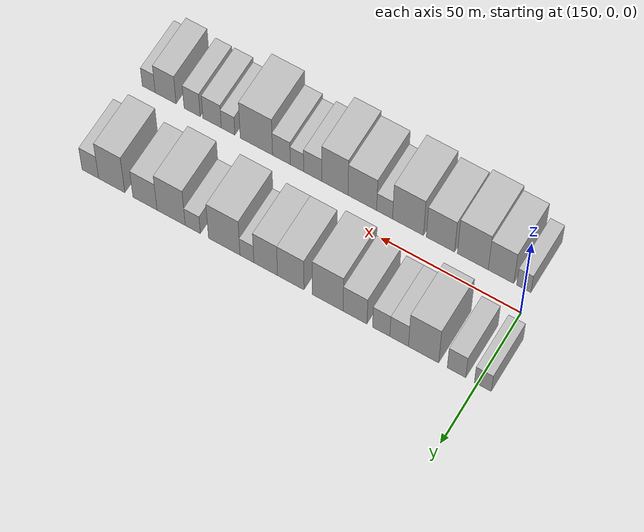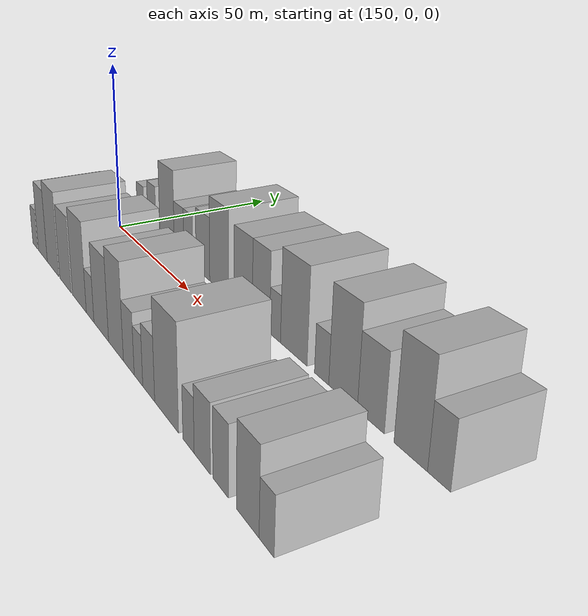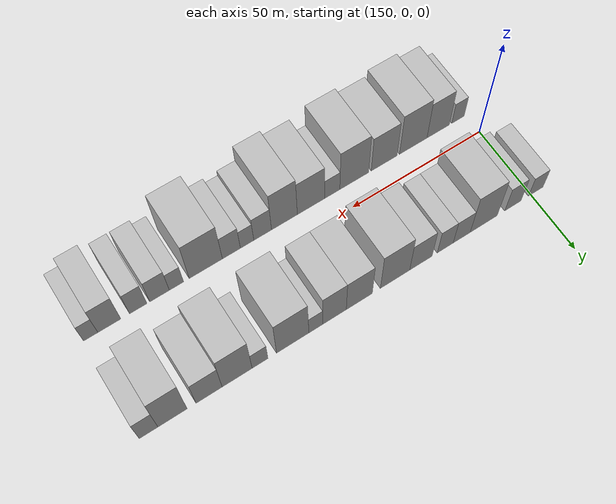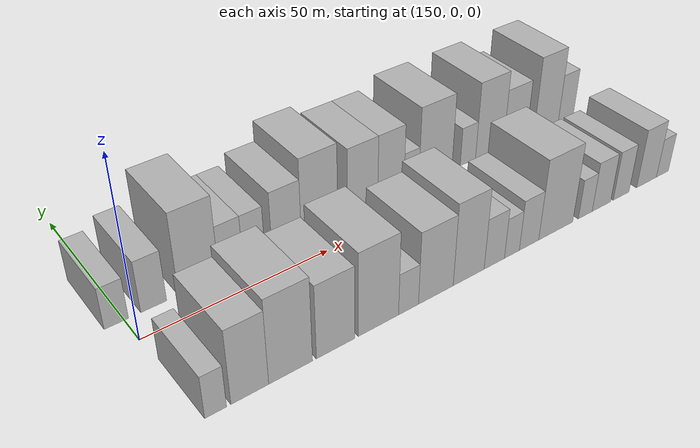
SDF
<sdf version="1.6">
 <world name="default">
  <model name="building_15">
   <static>1</static>
   <pose>148.0686 17.5000 0 0.000000 0.000000 1.570796</pose>
   <link name="link">
    <pose>0 0 6.00 0 0 0</pose>
    <collision name="collision"><geometry><box><size>20.0000 5.8838 12.0000</size></box></geometry></collision>
    <visual name="visual">
     <cast_shadows>0</cast_shadows>
     <geometry><box><size>20.0000 5.8838 12.0000</size></box></geometry>
     <material>
      <script>
       <uri>model://HANNAS_wall/materials/scripts</uri>
       <uri>model://HANNAS_wall/materials/textures</uri>
       <name>vrc/HANNAS_wall</name>
      </script>
     </material>
    </visual>
   </link>
  </model>
  <model name="building_16">
   <static>1</static>
   <pose>157.2566 17.5000 0 0.000000 0.000000 1.570796</pose>
   <link name="link">
    <pose>0 0 7.50 0 0 0</pose>
    <collision name="collision"><geometry><box><size>20.0000 6.4921 15.0000</size></box></geometry></collision>
    <visual name="visual">
     <cast_shadows>0</cast_shadows>
     <geometry><box><size>20.0000 6.4921 15.0000</size></box></geometry>
     <material>
      <script>
       <uri>model://HANNAS_wall/materials/scripts</uri>
       <uri>model://HANNAS_wall/materials/textures</uri>
       <name>vrc/HANNAS_wall</name>
      </script>
     </material>
    </visual>
   </link>
  </model>
  <model name="building_17">
   <static>1</static>
   <pose>168.8353 17.5000 0 0.000000 0.000000 1.570796</pose>
   <link name="link">
    <pose>0 0 12.00 0 0 0</pose>
    <collision name="collision"><geometry><box><size>20.0000 10.6654 24.0000</size></box></geometry></collision>
    <visual name="visual">
     <cast_shadows>0</cast_shadows>
     <geometry><box><size>20.0000 10.6654 24.0000</size></box></geometry>
     <material>
      <script>
       <uri>model://HANNAS_wall/materials/scripts</uri>
       <uri>model://HANNAS_wall/materials/textures</uri>
       <name>vrc/HANNAS_wall</name>
      </script>
     </material>
    </visual>
   </link>
  </model>
  <model name="building_18">
   <static>1</static>
   <pose>177.4639 17.5000 0 0.000000 0.000000 1.570796</pose>
   <link name="link">
    <pose>0 0 7.50 0 0 0</pose>
    <collision name="collision"><geometry><box><size>20.0000 6.5917 15.0000</size></box></geometry></collision>
    <visual name="visual">
     <cast_shadows>0</cast_shadows>
     <geometry><box><size>20.0000 6.5917 15.0000</size></box></geometry>
     <material>
      <script>
       <uri>model://HANNAS_wall/materials/scripts</uri>
       <uri>model://HANNAS_wall/materials/textures</uri>
       <name>vrc/HANNAS_wall</name>
      </script>
     </material>
    </visual>
   </link>
  </model>
  <model name="building_19">
   <static>1</static>
   <pose>183.8232 17.5000 0 0.000000 0.000000 1.570796</pose>
   <link name="link">
    <pose>0 0 7.50 0 0 0</pose>
    <collision name="collision"><geometry><box><size>20.0000 6.1270 15.0000</size></box></geometry></collision>
    <visual name="visual">
     <cast_shadows>0</cast_shadows>
     <geometry><box><size>20.0000 6.1270 15.0000</size></box></geometry>
     <material>
      <script>
       <uri>model://HANNAS_wall/materials/scripts</uri>
       <uri>model://HANNAS_wall/materials/textures</uri>
       <name>vrc/HANNAS_wall</name>
      </script>
     </material>
    </visual>
   </link>
  </model>
  <model name="building_20">
   <static>1</static>
   <pose>193.1469 17.5000 0 0.000000 0.000000 1.570796</pose>
   <link name="link">
    <pose>0 0 9.00 0 0 0</pose>
    <collision name="collision"><geometry><box><size>20.0000 8.5202 18.0000</size></box></geometry></collision>
    <visual name="visual">
     <cast_shadows>0</cast_shadows>
     <geometry><box><size>20.0000 8.5202 18.0000</size></box></geometry>
     <material>
      <script>
       <uri>model://HANNAS_wall/materials/scripts</uri>
       <uri>model://HANNAS_wall/materials/textures</uri>
       <name>vrc/HANNAS_wall</name>
      </script>
     </material>
    </visual>
   </link>
  </model>
  <model name="building_21">
   <static>1</static>
   <pose>202.9003 17.5000 0 0.000000 0.000000 1.570796</pose>
   <link name="link">
    <pose>0 0 12.00 0 0 0</pose>
    <collision name="collision"><geometry><box><size>20.0000 10.9868 24.0000</size></box></geometry></collision>
    <visual name="visual">
     <cast_shadows>0</cast_shadows>
     <geometry><box><size>20.0000 10.9868 24.0000</size></box></geometry>
     <material>
      <script>
       <uri>model://HANNAS_wall/materials/scripts</uri>
       <uri>model://HANNAS_wall/materials/textures</uri>
       <name>vrc/HANNAS_wall</name>
      </script>
     </material>
    </visual>
   </link>
  </model>
  <model name="building_22">
   <static>1</static>
   <pose>216.1861 17.5000 0 0.000000 0.000000 1.570796</pose>
   <link name="link">
    <pose>0 0 10.50 0 0 0</pose>
    <collision name="collision"><geometry><box><size>20.0000 9.5848 21.0000</size></box></geometry></collision>
    <visual name="visual">
     <cast_shadows>0</cast_shadows>
     <geometry><box><size>20.0000 9.5848 21.0000</size></box></geometry>
     <material>
      <script>
       <uri>model://HANNAS_wall/materials/scripts</uri>
       <uri>model://HANNAS_wall/materials/textures</uri>
       <name>vrc/HANNAS_wall</name>
      </script>
     </material>
    </visual>
   </link>
  </model>
  <model name="building_23">
   <static>1</static>
   <pose>225.2567 17.5000 0 0.000000 0.000000 1.570796</pose>
   <link name="link">
    <pose>0 0 10.50 0 0 0</pose>
    <collision name="collision"><geometry><box><size>20.0000 8.5564 21.0000</size></box></geometry></collision>
    <visual name="visual">
     <cast_shadows>0</cast_shadows>
     <geometry><box><size>20.0000 8.5564 21.0000</size></box></geometry>
     <material>
      <script>
       <uri>model://HANNAS_wall/materials/scripts</uri>
       <uri>model://HANNAS_wall/materials/textures</uri>
       <name>vrc/HANNAS_wall</name>
      </script>
     </material>
    </visual>
   </link>
  </model>
  <model name="building_24">
   <static>1</static>
   <pose>232.0431 17.5000 0 0.000000 0.000000 1.570796</pose>
   <link name="link">
    <pose>0 0 6.00 0 0 0</pose>
    <collision name="collision"><geometry><box><size>20.0000 5.0165 12.0000</size></box></geometry></collision>
    <visual name="visual">
     <cast_shadows>0</cast_shadows>
     <geometry><box><size>20.0000 5.0165 12.0000</size></box></geometry>
     <material>
      <script>
       <uri>model://HANNAS_wall/materials/scripts</uri>
       <uri>model://HANNAS_wall/materials/textures</uri>
       <name>vrc/HANNAS_wall</name>
      </script>
     </material>
    </visual>
   </link>
  </model>
  <model name="building_25">
   <static>1</static>
   <pose>240.2965 17.5000 0 0.000000 0.000000 1.570796</pose>
   <link name="link">
    <pose>0 0 12.00 0 0 0</pose>
    <collision name="collision"><geometry><box><size>20.0000 11.4902 24.0000</size></box></geometry></collision>
    <visual name="visual">
     <cast_shadows>0</cast_shadows>
     <geometry><box><size>20.0000 11.4902 24.0000</size></box></geometry>
     <material>
      <script>
       <uri>model://HANNAS_wall/materials/scripts</uri>
       <uri>model://HANNAS_wall/materials/textures</uri>
       <name>vrc/HANNAS_wall</name>
      </script>
     </material>
    </visual>
   </link>
  </model>
  <model name="building_26">
   <static>1</static>
   <pose>251.8174 17.5000 0 0.000000 0.000000 1.570796</pose>
   <link name="link">
    <pose>0 0 6.00 0 0 0</pose>
    <collision name="collision"><geometry><box><size>20.0000 5.5515 12.0000</size></box></geometry></collision>
    <visual name="visual">
     <cast_shadows>0</cast_shadows>
     <geometry><box><size>20.0000 5.5515 12.0000</size></box></geometry>
     <material>
      <script>
       <uri>model://HANNAS_wall/materials/scripts</uri>
       <uri>model://HANNAS_wall/materials/textures</uri>
       <name>vrc/HANNAS_wall</name>
      </script>
     </material>
    </visual>
   </link>
  </model>
  <model name="building_27">
   <static>1</static>
   <pose>259.7761 17.5000 0 0.000000 0.000000 1.570796</pose>
   <link name="link">
    <pose>0 0 12.00 0 0 0</pose>
    <collision name="collision"><geometry><box><size>20.0000 10.3660 24.0000</size></box></geometry></collision>
    <visual name="visual">
     <cast_shadows>0</cast_shadows>
     <geometry><box><size>20.0000 10.3660 24.0000</size></box></geometry>
     <material>
      <script>
       <uri>model://HANNAS_wall/materials/scripts</uri>
       <uri>model://HANNAS_wall/materials/textures</uri>
       <name>vrc/HANNAS_wall</name>
      </script>
     </material>
    </visual>
   </link>
  </model>
  <model name="building_28">
   <static>1</static>
   <pose>269.4195 17.5000 0 0.000000 0.000000 1.570796</pose>
   <link name="link">
    <pose>0 0 9.00 0 0 0</pose>
    <collision name="collision"><geometry><box><size>20.0000 8.9207 18.0000</size></box></geometry></collision>
    <visual name="visual">
     <cast_shadows>0</cast_shadows>
     <geometry><box><size>20.0000 8.9207 18.0000</size></box></geometry>
     <material>
      <script>
       <uri>model://HANNAS_wall/materials/scripts</uri>
       <uri>model://HANNAS_wall/materials/textures</uri>
       <name>vrc/HANNAS_wall</name>
      </script>
     </material>
    </visual>
   </link>
  </model>
  <model name="building_29">
   <static>1</static>
   <pose>281.7597 17.5000 0 0.000000 0.000000 1.570796</pose>
   <link name="link">
    <pose>0 0 12.00 0 0 0</pose>
    <collision name="collision"><geometry><box><size>20.0000 9.7597 24.0000</size></box></geometry></collision>
    <visual name="visual">
     <cast_shadows>0</cast_shadows>
     <geometry><box><size>20.0000 9.7597 24.0000</size></box></geometry>
     <material>
      <script>
       <uri>model://HANNAS_wall/materials/scripts</uri>
       <uri>model://HANNAS_wall/materials/textures</uri>
       <name>vrc/HANNAS_wall</name>
      </script>
     </material>
    </visual>
   </link>
  </model>
  <model name="building_30">
   <static>1</static>
   <pose>289.7358 17.5000 0 0.000000 0.000000 1.570796</pose>
   <link name="link">
    <pose>0 0 7.50 0 0 0</pose>
    <collision name="collision"><geometry><box><size>20.0000 6.1925 15.0000</size></box></geometry></collision>
    <visual name="visual">
     <cast_shadows>0</cast_shadows>
     <geometry><box><size>20.0000 6.1925 15.0000</size></box></geometry>
     <material>
      <script>
       <uri>model://HANNAS_wall/materials/scripts</uri>
       <uri>model://HANNAS_wall/materials/textures</uri>
       <name>vrc/HANNAS_wall</name>
      </script>
     </material>
    </visual>
   </link>
  </model>
  <model name="building_47">
   <static>1</static>
   <pose>153.2281 -17.5000 0 0.000000 0.000000 1.570796</pose>
   <link name="link">
    <pose>0 0 6.00 0 0 0</pose>
    <collision name="collision"><geometry><box><size>20.0000 5.0671 12.0000</size></box></geometry></collision>
    <visual name="visual">
     <cast_shadows>0</cast_shadows>
     <geometry><box><size>20.0000 5.0671 12.0000</size></box></geometry>
     <material>
      <script>
       <uri>model://HANNAS_wall/materials/scripts</uri>
       <uri>model://HANNAS_wall/materials/textures</uri>
       <name>vrc/HANNAS_wall</name>
      </script>
     </material>
    </visual>
   </link>
  </model>
  <model name="building_48">
   <static>1</static>
   <pose>161.2894 -17.5000 0 0.000000 0.000000 1.570796</pose>
   <link name="link">
    <pose>0 0 10.50 0 0 0</pose>
    <collision name="collision"><geometry><box><size>20.0000 9.0556 21.0000</size></box></geometry></collision>
    <visual name="visual">
     <cast_shadows>0</cast_shadows>
     <geometry><box><size>20.0000 9.0556 21.0000</size></box></geometry>
     <material>
      <script>
       <uri>model://HANNAS_wall/materials/scripts</uri>
       <uri>model://HANNAS_wall/materials/textures</uri>
       <name>vrc/HANNAS_wall</name>
      </script>
     </material>
    </visual>
   </link>
  </model>
  <model name="building_49">
   <static>1</static>
   <pose>171.3125 -17.5000 0 0.000000 0.000000 1.570796</pose>
   <link name="link">
    <pose>0 0 12.00 0 0 0</pose>
    <collision name="collision"><geometry><box><size>20.0000 10.9906 24.0000</size></box></geometry></collision>
    <visual name="visual">
     <cast_shadows>0</cast_shadows>
     <geometry><box><size>20.0000 10.9906 24.0000</size></box></geometry>
     <material>
      <script>
       <uri>model://HANNAS_wall/materials/scripts</uri>
       <uri>model://HANNAS_wall/materials/textures</uri>
       <name>vrc/HANNAS_wall</name>
      </script>
     </material>
    </visual>
   </link>
  </model>
  <model name="building_50">
   <static>1</static>
   <pose>182.8734 -17.5000 0 0.000000 0.000000 1.570796</pose>
   <link name="link">
    <pose>0 0 10.50 0 0 0</pose>
    <collision name="collision"><geometry><box><size>20.0000 10.1313 21.0000</size></box></geometry></collision>
    <visual name="visual">
     <cast_shadows>0</cast_shadows>
     <geometry><box><size>20.0000 10.1313 21.0000</size></box></geometry>
     <material>
      <script>
       <uri>model://HANNAS_wall/materials/scripts</uri>
       <uri>model://HANNAS_wall/materials/textures</uri>
       <name>vrc/HANNAS_wall</name>
      </script>
     </material>
    </visual>
   </link>
  </model>
  <model name="building_51">
   <static>1</static>
   <pose>194.5248 -17.5000 0 0.000000 0.000000 1.570796</pose>
   <link name="link">
    <pose>0 0 12.00 0 0 0</pose>
    <collision name="collision"><geometry><box><size>20.0000 11.1714 24.0000</size></box></geometry></collision>
    <visual name="visual">
     <cast_shadows>0</cast_shadows>
     <geometry><box><size>20.0000 11.1714 24.0000</size></box></geometry>
     <material>
      <script>
       <uri>model://HANNAS_wall/materials/scripts</uri>
       <uri>model://HANNAS_wall/materials/textures</uri>
       <name>vrc/HANNAS_wall</name>
      </script>
     </material>
    </visual>
   </link>
  </model>
  <model name="building_52">
   <static>1</static>
   <pose>202.9877 -17.5000 0 0.000000 0.000000 1.570796</pose>
   <link name="link">
    <pose>0 0 6.00 0 0 0</pose>
    <collision name="collision"><geometry><box><size>20.0000 5.7544 12.0000</size></box></geometry></collision>
    <visual name="visual">
     <cast_shadows>0</cast_shadows>
     <geometry><box><size>20.0000 5.7544 12.0000</size></box></geometry>
     <material>
      <script>
       <uri>model://HANNAS_wall/materials/scripts</uri>
       <uri>model://HANNAS_wall/materials/textures</uri>
       <name>vrc/HANNAS_wall</name>
      </script>
     </material>
    </visual>
   </link>
  </model>
  <model name="building_53">
   <static>1</static>
   <pose>211.0605 -17.5000 0 0.000000 0.000000 1.570796</pose>
   <link name="link">
    <pose>0 0 10.50 0 0 0</pose>
    <collision name="collision"><geometry><box><size>20.0000 10.3911 21.0000</size></box></geometry></collision>
    <visual name="visual">
     <cast_shadows>0</cast_shadows>
     <geometry><box><size>20.0000 10.3911 21.0000</size></box></geometry>
     <material>
      <script>
       <uri>model://HANNAS_wall/materials/scripts</uri>
       <uri>model://HANNAS_wall/materials/textures</uri>
       <name>vrc/HANNAS_wall</name>
      </script>
     </material>
    </visual>
   </link>
  </model>
  <model name="building_54">
   <static>1</static>
   <pose>221.0789 -17.5000 0 0.000000 0.000000 1.570796</pose>
   <link name="link">
    <pose>0 0 12.00 0 0 0</pose>
    <collision name="collision"><geometry><box><size>20.0000 9.6458 24.0000</size></box></geometry></collision>
    <visual name="visual">
     <cast_shadows>0</cast_shadows>
     <geometry><box><size>20.0000 9.6458 24.0000</size></box></geometry>
     <material>
      <script>
       <uri>model://HANNAS_wall/materials/scripts</uri>
       <uri>model://HANNAS_wall/materials/textures</uri>
       <name>vrc/HANNAS_wall</name>
      </script>
     </material>
    </visual>
   </link>
  </model>
  <model name="building_55">
   <static>1</static>
   <pose>229.1774 -17.5000 0 0.000000 0.000000 1.570796</pose>
   <link name="link">
    <pose>0 0 7.50 0 0 0</pose>
    <collision name="collision"><geometry><box><size>20.0000 6.5513 15.0000</size></box></geometry></collision>
    <visual name="visual">
     <cast_shadows>0</cast_shadows>
     <geometry><box><size>20.0000 6.5513 15.0000</size></box></geometry>
     <material>
      <script>
       <uri>model://HANNAS_wall/materials/scripts</uri>
       <uri>model://HANNAS_wall/materials/textures</uri>
       <name>vrc/HANNAS_wall</name>
      </script>
     </material>
    </visual>
   </link>
  </model>
  <model name="building_56">
   <static>1</static>
   <pose>234.9098 -17.5000 0 0.000000 0.000000 1.570796</pose>
   <link name="link">
    <pose>0 0 6.00 0 0 0</pose>
    <collision name="collision"><geometry><box><size>20.0000 4.9135 12.0000</size></box></geometry></collision>
    <visual name="visual">
     <cast_shadows>0</cast_shadows>
     <geometry><box><size>20.0000 4.9135 12.0000</size></box></geometry>
     <material>
      <script>
       <uri>model://HANNAS_wall/materials/scripts</uri>
       <uri>model://HANNAS_wall/materials/textures</uri>
       <name>vrc/HANNAS_wall</name>
      </script>
     </material>
    </visual>
   </link>
  </model>
  <model name="building_57">
   <static>1</static>
   <pose>240.6346 -17.5000 0 0.000000 0.000000 1.570796</pose>
   <link name="link">
    <pose>0 0 7.50 0 0 0</pose>
    <collision name="collision"><geometry><box><size>20.0000 6.5362 15.0000</size></box></geometry></collision>
    <visual name="visual">
     <cast_shadows>0</cast_shadows>
     <geometry><box><size>20.0000 6.5362 15.0000</size></box></geometry>
     <material>
      <script>
       <uri>model://HANNAS_wall/materials/scripts</uri>
       <uri>model://HANNAS_wall/materials/textures</uri>
       <name>vrc/HANNAS_wall</name>
      </script>
     </material>
    </visual>
   </link>
  </model>
  <model name="building_58">
   <static>1</static>
   <pose>249.8675 -17.5000 0 0.000000 0.000000 1.570796</pose>
   <link name="link">
    <pose>0 0 12.00 0 0 0</pose>
    <collision name="collision"><geometry><box><size>20.0000 11.9295 24.0000</size></box></geometry></collision>
    <visual name="visual">
     <cast_shadows>0</cast_shadows>
     <geometry><box><size>20.0000 11.9295 24.0000</size></box></geometry>
     <material>
      <script>
       <uri>model://HANNAS_wall/materials/scripts</uri>
       <uri>model://HANNAS_wall/materials/textures</uri>
       <name>vrc/HANNAS_wall</name>
      </script>
     </material>
    </visual>
   </link>
  </model>
  <model name="building_59">
   <static>1</static>
   <pose>260.3581 -17.5000 0 0.000000 0.000000 1.570796</pose>
   <link name="link">
    <pose>0 0 6.00 0 0 0</pose>
    <collision name="collision"><geometry><box><size>20.0000 5.0516 12.0000</size></box></geometry></collision>
    <visual name="visual">
     <cast_shadows>0</cast_shadows>
     <geometry><box><size>20.0000 5.0516 12.0000</size></box></geometry>
     <material>
      <script>
       <uri>model://HANNAS_wall/materials/scripts</uri>
       <uri>model://HANNAS_wall/materials/textures</uri>
       <name>vrc/HANNAS_wall</name>
      </script>
     </material>
    </visual>
   </link>
  </model>
  <model name="building_60">
   <static>1</static>
   <pose>266.3171 -17.5000 0 0.000000 0.000000 1.570796</pose>
   <link name="link">
    <pose>0 0 7.50 0 0 0</pose>
    <collision name="collision"><geometry><box><size>20.0000 6.8665 15.0000</size></box></geometry></collision>
    <visual name="visual">
     <cast_shadows>0</cast_shadows>
     <geometry><box><size>20.0000 6.8665 15.0000</size></box></geometry>
     <material>
      <script>
       <uri>model://HANNAS_wall/materials/scripts</uri>
       <uri>model://HANNAS_wall/materials/textures</uri>
       <name>vrc/HANNAS_wall</name>
      </script>
     </material>
    </visual>
   </link>
  </model>
  <model name="building_61">
   <static>1</static>
   <pose>273.7642 -17.5000 0 0.000000 0.000000 1.570796</pose>
   <link name="link">
    <pose>0 0 7.50 0 0 0</pose>
    <collision name="collision"><geometry><box><size>20.0000 6.0278 15.0000</size></box></geometry></collision>
    <visual name="visual">
     <cast_shadows>0</cast_shadows>
     <geometry><box><size>20.0000 6.0278 15.0000</size></box></geometry>
     <material>
      <script>
       <uri>model://HANNAS_wall/materials/scripts</uri>
       <uri>model://HANNAS_wall/materials/textures</uri>
       <name>vrc/HANNAS_wall</name>
      </script>
     </material>
    </visual>
   </link>
  </model>
  <model name="building_62">
   <static>1</static>
   <pose>283.7044 -17.5000 0 0.000000 0.000000 1.570796</pose>
   <link name="link">
    <pose>0 0 9.00 0 0 0</pose>
    <collision name="collision"><geometry><box><size>20.0000 7.8526 18.0000</size></box></geometry></collision>
    <visual name="visual">
     <cast_shadows>0</cast_shadows>
     <geometry><box><size>20.0000 7.8526 18.0000</size></box></geometry>
     <material>
      <script>
       <uri>model://HANNAS_wall/materials/scripts</uri>
       <uri>model://HANNAS_wall/materials/textures</uri>
       <name>vrc/HANNAS_wall</name>
      </script>
     </material>
    </visual>
   </link>
  </model>
  <model name="building_63">
   <static>1</static>
   <pose>290.0606 -17.5000 0 0.000000 0.000000 1.570796</pose>
   <link name="link">
    <pose>0 0 6.00 0 0 0</pose>
    <collision name="collision"><geometry><box><size>20.0000 4.8598 12.0000</size></box></geometry></collision>
    <visual name="visual">
     <cast_shadows>0</cast_shadows>
     <geometry><box><size>20.0000 4.8598 12.0000</size></box></geometry>
     <material>
      <script>
       <uri>model://HANNAS_wall/materials/scripts</uri>
       <uri>model://HANNAS_wall/materials/textures</uri>
       <name>vrc/HANNAS_wall</name>
      </script>
     </material>
    </visual>
   </link>
  </model>
 </world>
</sdf>
